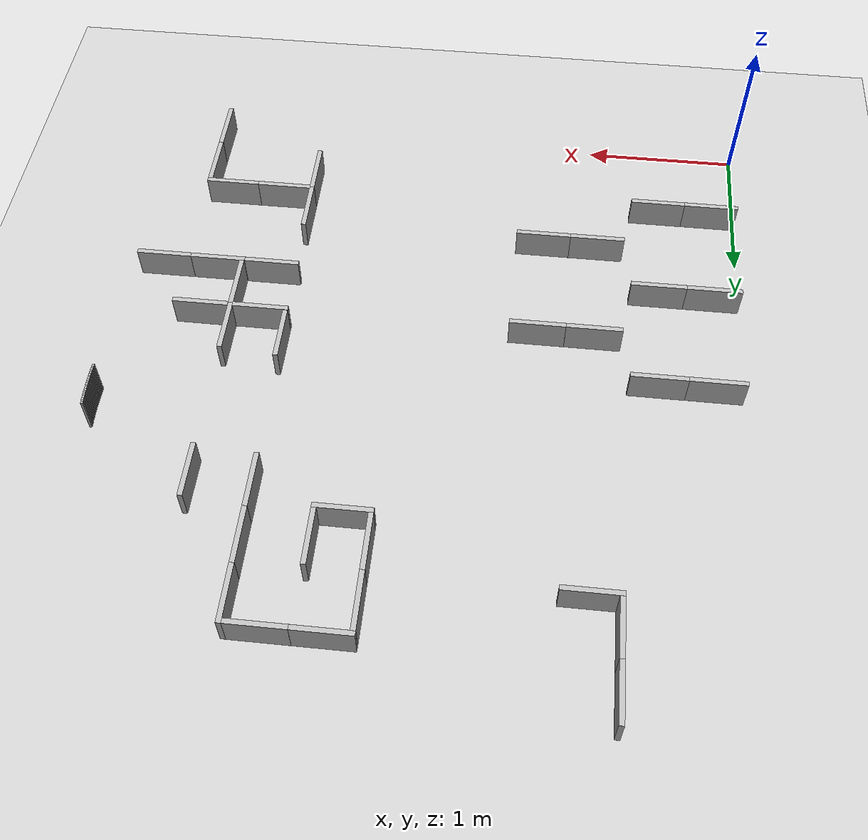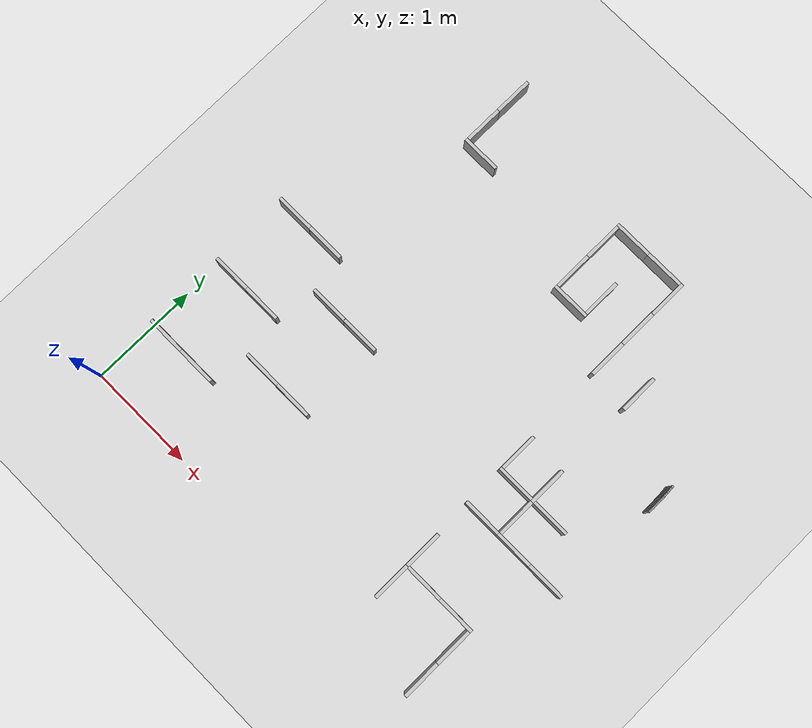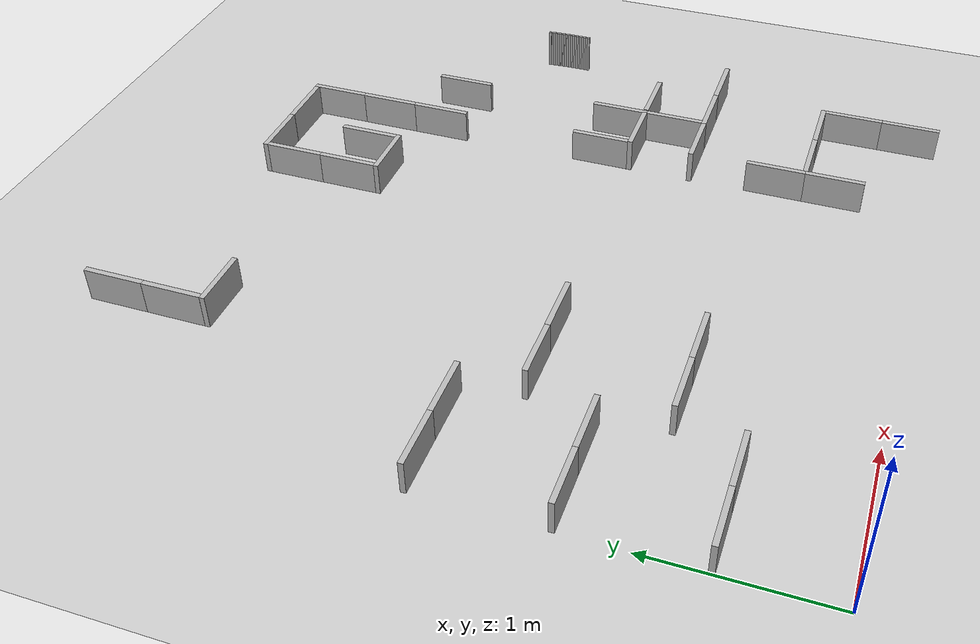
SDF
<sdf version="1.6">
 <world name="base">
  <include><uri>model://sun</uri></include>
  <include><uri>model://ground_plane</uri></include>
  <model name="k404">
   <link name="276_link">
    <collision name="collision_276">
     <pose>3.991618651844006 2.7045397119951424 0 0 -0 0</pose>
     <geometry><box><size>0.015 0.015 0.50</size></box></geometry>
    </collision>
    <visual name="visual_276">
     <pose>3.991618651844006 2.7045397119951424 0 0 -0 0</pose>
     <geometry><box><size>0.015 0.015 0.50</size></box></geometry>
    </visual>
   </link>
   <link name="277_link">
    <collision name="collision_277">
     <pose>3.9927165269257694 2.690694300887916 0 0 -0 0</pose>
     <geometry><box><size>0.015 0.015 0.50</size></box></geometry>
    </collision>
    <visual name="visual_277">
     <pose>3.9927165269257694 2.690694300887916 0 0 -0 0</pose>
     <geometry><box><size>0.015 0.015 0.50</size></box></geometry>
    </visual>
   </link>
   <link name="278_link">
    <collision name="collision_278">
     <pose>3.993737466510136 2.6768430041692572 0 0 -0 0</pose>
     <geometry><box><size>0.015 0.015 0.50</size></box></geometry>
    </collision>
    <visual name="visual_278">
     <pose>3.993737466510136 2.6768430041692572 0 0 -0 0</pose>
     <geometry><box><size>0.015 0.015 0.50</size></box></geometry>
    </visual>
   </link>
   <link name="279_link">
    <collision name="collision_279">
     <pose>3.9946814390867074 2.662986249347224 0 0 -0 0</pose>
     <geometry><box><size>0.015 0.015 0.50</size></box></geometry>
    </collision>
    <visual name="visual_279">
     <pose>3.9946814390867074 2.662986249347224 0 0 -0 0</pose>
     <geometry><box><size>0.015 0.015 0.50</size></box></geometry>
    </visual>
   </link>
   <link name="280_link">
    <collision name="collision_280">
     <pose>3.9955484155206014 2.6491244640983345 0 0 -0 0</pose>
     <geometry><box><size>0.015 0.015 0.50</size></box></geometry>
    </collision>
    <visual name="visual_280">
     <pose>3.9955484155206014 2.6491244640983345 0 0 -0 0</pose>
     <geometry><box><size>0.015 0.015 0.50</size></box></geometry>
    </visual>
   </link>
   <link name="281_link">
    <collision name="collision_281">
     <pose>3.9963383690533556 2.6352580762543663 0 0 -0 0</pose>
     <geometry><box><size>0.015 0.015 0.50</size></box></geometry>
    </collision>
    <visual name="visual_281">
     <pose>3.9963383690533556 2.6352580762543663 0 0 -0 0</pose>
     <geometry><box><size>0.015 0.015 0.50</size></box></geometry>
    </visual>
   </link>
   <link name="282_link">
    <collision name="collision_282">
     <pose>3.997051275303751 2.621387513789152 0 0 -0 0</pose>
     <geometry><box><size>0.015 0.015 0.50</size></box></geometry>
    </collision>
    <visual name="visual_282">
     <pose>3.997051275303751 2.621387513789152 0 0 -0 0</pose>
     <geometry><box><size>0.015 0.015 0.50</size></box></geometry>
    </visual>
   </link>
   <link name="283_link">
    <collision name="collision_283">
     <pose>3.997687112268564 2.607513204805371 0 0 -0 0</pose>
     <geometry><box><size>0.015 0.015 0.50</size></box></geometry>
    </collision>
    <visual name="visual_283">
     <pose>3.997687112268564 2.607513204805371 0 0 -0 0</pose>
     <geometry><box><size>0.015 0.015 0.50</size></box></geometry>
    </visual>
   </link>
   <link name="284_link">
    <collision name="collision_284">
     <pose>3.998245860323248 2.5936355775213333 0 0 -0 0</pose>
     <geometry><box><size>0.015 0.015 0.50</size></box></geometry>
    </collision>
    <visual name="visual_284">
     <pose>3.998245860323248 2.5936355775213333 0 0 -0 0</pose>
     <geometry><box><size>0.015 0.015 0.50</size></box></geometry>
    </visual>
   </link>
   <link name="285_link">
    <collision name="collision_285">
     <pose>3.998727502222537 2.579755060257769 0 0 -0 0</pose>
     <geometry><box><size>0.015 0.015 0.50</size></box></geometry>
    </collision>
    <visual name="visual_285">
     <pose>3.998727502222537 2.579755060257769 0 0 -0 0</pose>
     <geometry><box><size>0.015 0.015 0.50</size></box></geometry>
    </visual>
   </link>
   <link name="286_link">
    <collision name="collision_286">
     <pose>3.999132023100979 2.565872081424602 0 0 -0 0</pose>
     <geometry><box><size>0.015 0.015 0.50</size></box></geometry>
    </collision>
    <visual name="visual_286">
     <pose>3.999132023100979 2.565872081424602 0 0 -0 0</pose>
     <geometry><box><size>0.015 0.015 0.50</size></box></geometry>
    </visual>
   </link>
   <link name="287_link">
    <collision name="collision_287">
     <pose>3.9994594104733925 2.551987069507731 0 0 -0 0</pose>
     <geometry><box><size>0.015 0.015 0.50</size></box></geometry>
    </collision>
    <visual name="visual_287">
     <pose>3.9994594104733925 2.551987069507731 0 0 -0 0</pose>
     <geometry><box><size>0.015 0.015 0.50</size></box></geometry>
    </visual>
   </link>
   <link name="288_link">
    <collision name="collision_288">
     <pose>3.999709654235256 2.538100453055805 0 0 -0 0</pose>
     <geometry><box><size>0.015 0.015 0.50</size></box></geometry>
    </collision>
    <visual name="visual_288">
     <pose>3.999709654235256 2.538100453055805 0 0 -0 0</pose>
     <geometry><box><size>0.015 0.015 0.50</size></box></geometry>
    </visual>
   </link>
   <link name="289_link">
    <collision name="collision_289">
     <pose>3.9998827466630162 2.524212660666994 0 0 -0 0</pose>
     <geometry><box><size>0.015 0.015 0.50</size></box></geometry>
    </collision>
    <visual name="visual_289">
     <pose>3.9998827466630162 2.524212660666994 0 0 -0 0</pose>
     <geometry><box><size>0.015 0.015 0.50</size></box></geometry>
    </visual>
   </link>
   <link name="290_link">
    <collision name="collision_290">
     <pose>3.9999786824143277 2.510324120975764 0 0 -0 0</pose>
     <geometry><box><size>0.015 0.015 0.50</size></box></geometry>
    </collision>
    <visual name="visual_290">
     <pose>3.9999786824143277 2.510324120975764 0 0 -0 0</pose>
     <geometry><box><size>0.015 0.015 0.50</size></box></geometry>
    </visual>
   </link>
   <link name="291_link">
    <collision name="collision_291">
     <pose>3.9999974585282185 2.4964352626396438 0 0 -0 0</pose>
     <geometry><box><size>0.015 0.015 0.50</size></box></geometry>
    </collision>
    <visual name="visual_291">
     <pose>3.9999974585282185 2.4964352626396438 0 0 -0 0</pose>
     <geometry><box><size>0.015 0.015 0.50</size></box></geometry>
    </visual>
   </link>
   <link name="292_link">
    <collision name="collision_292">
     <pose>3.99993907442518 2.482546514325999 0 0 -0 0</pose>
     <geometry><box><size>0.015 0.015 0.50</size></box></geometry>
    </collision>
    <visual name="visual_292">
     <pose>3.99993907442518 2.482546514325999 0 0 -0 0</pose>
     <geometry><box><size>0.015 0.015 0.50</size></box></geometry>
    </visual>
   </link>
   <link name="293_link">
    <collision name="collision_293">
     <pose>3.999803531907187 2.468658304698798 0 0 -0 0</pose>
     <geometry><box><size>0.015 0.015 0.50</size></box></geometry>
    </collision>
    <visual name="visual_293">
     <pose>3.999803531907187 2.468658304698798 0 0 -0 0</pose>
     <geometry><box><size>0.015 0.015 0.50</size></box></geometry>
    </visual>
   </link>
   <link name="294_link">
    <collision name="collision_294">
     <pose>3.9995908351576386 2.454771062405384 0 0 -0 0</pose>
     <geometry><box><size>0.015 0.015 0.50</size></box></geometry>
    </collision>
    <visual name="visual_294">
     <pose>3.9995908351576386 2.454771062405384 0 0 -0 0</pose>
     <geometry><box><size>0.015 0.015 0.50</size></box></geometry>
    </visual>
   </link>
   <link name="295_link">
    <collision name="collision_295">
     <pose>3.9993009907412334 2.4408852160632426 0 0 -0 0</pose>
     <geometry><box><size>0.015 0.015 0.50</size></box></geometry>
    </collision>
    <visual name="visual_295">
     <pose>3.9993009907412334 2.4408852160632426 0 0 -0 0</pose>
     <geometry><box><size>0.015 0.015 0.50</size></box></geometry>
    </visual>
   </link>
   <link name="296_link">
    <collision name="collision_296">
     <pose>3.9989340076037627 2.427001194246778 0 0 -0 0</pose>
     <geometry><box><size>0.015 0.015 0.50</size></box></geometry>
    </collision>
    <visual name="visual_296">
     <pose>3.9989340076037627 2.427001194246778 0 0 -0 0</pose>
     <geometry><box><size>0.015 0.015 0.50</size></box></geometry>
    </visual>
   </link>
   <static>true</static>
  </model>
  <model name="Placa1">
   <pose>2.33874 3.98001 0 0 -0 1.57</pose>
   <static>1</static>
   <link name="link">
    <collision name="collision"><geometry><box><size>0.031694 0.360886 0.40006</size></box></geometry></collision>
    <visual name="visual"><geometry><box><size>0.031694 0.360886 0.40006</size></box></geometry></visual>
   </link>
  </model>
  <model name="Placa2">
   <pose>0.9475 1.775 0 0 -0 1.57</pose>
   <static>1</static>
   <link name="link">
    <collision name="collision"><geometry><box><size>0.031694 0.360886 0.40006</size></box></geometry></collision>
    <visual name="visual"><geometry><box><size>0.031694 0.360886 0.40006</size></box></geometry></visual>
   </link>
  </model>
  <model name="Placa3">
   <pose>1.30789 1 0 0 -0 1.57</pose>
   <static>1</static>
   <link name="link">
    <collision name="collision"><geometry><box><size>0.031694 0.360886 0.40006</size></box></geometry></collision>
    <visual name="visual"><geometry><box><size>0.031694 0.360886 0.40006</size></box></geometry></visual>
   </link>
  </model>
  <model name="Placa4">
   <pose>0.948425 1 0 0 -0 1.57</pose>
   <static>1</static>
   <link name="link">
    <collision name="collision"><geometry><box><size>0.031694 0.360886 0.40006</size></box></geometry></collision>
    <visual name="visual"><geometry><box><size>0.031694 0.360886 0.40006</size></box></geometry></visual>
   </link>
  </model>
  <model name="Placa5">
   <pose>0.18 1.38 0 0 -0 1.57</pose>
   <static>1</static>
   <link name="link">
    <collision name="collision"><geometry><box><size>0.031694 0.360886 0.40006</size></box></geometry></collision>
    <visual name="visual"><geometry><box><size>0.031694 0.360886 0.40006</size></box></geometry></visual>
   </link>
  </model>
  <model name="Placa6">
   <pose>0.539939 1.38001 0 0 -0 1.57</pose>
   <static>1</static>
   <link name="link">
    <collision name="collision"><geometry><box><size>0.031694 0.360886 0.40006</size></box></geometry></collision>
    <visual name="visual"><geometry><box><size>0.031694 0.360886 0.40006</size></box></geometry></visual>
   </link>
  </model>
  <model name="Placa7">
   <pose>0.54085 0.630003 0 0 -0 1.57</pose>
   <static>1</static>
   <link name="link">
    <collision name="collision"><geometry><box><size>0.031694 0.360886 0.40006</size></box></geometry></collision>
    <visual name="visual"><geometry><box><size>0.031694 0.360886 0.40006</size></box></geometry></visual>
   </link>
  </model>
  <model name="Placa8">
   <pose>1.3086 1.775 0 0 -0 1.57</pose>
   <static>1</static>
   <link name="link">
    <collision name="collision"><geometry><box><size>0.031694 0.360886 0.40006</size></box></geometry></collision>
    <visual name="visual"><geometry><box><size>0.031694 0.360886 0.40006</size></box></geometry></visual>
   </link>
  </model>
  <model name="Placa9">
   <pose>3.80355 1.43 0 0 -0 1.57</pose>
   <static>1</static>
   <link name="link">
    <collision name="collision"><geometry><box><size>0.031694 0.360886 0.40006</size></box></geometry></collision>
    <visual name="visual"><geometry><box><size>0.031694 0.360886 0.40006</size></box></geometry></visual>
   </link>
  </model>
  <model name="Placa10">
   <pose>0.54 2.12 0 0 -0 1.57</pose>
   <static>1</static>
   <link name="link">
    <collision name="collision"><geometry><box><size>0.031694 0.360886 0.40006</size></box></geometry></collision>
    <visual name="visual"><geometry><box><size>0.031694 0.360886 0.40006</size></box></geometry></visual>
   </link>
  </model>
  <model name="Placa11">
   <pose>0.18 2.12 0 0 -0 1.57</pose>
   <static>1</static>
   <link name="link">
    <collision name="collision"><geometry><box><size>0.031694 0.360886 0.40006</size></box></geometry></collision>
    <visual name="visual"><geometry><box><size>0.031694 0.360886 0.40006</size></box></geometry></visual>
   </link>
  </model>
  <model name="Placa12">
   <pose>0.915 3.6 0 0 -0 1.57</pose>
   <static>1</static>
   <link name="link">
    <collision name="collision"><geometry><box><size>0.031694 0.360886 0.40006</size></box></geometry></collision>
    <visual name="visual"><geometry><box><size>0.031694 0.360886 0.40006</size></box></geometry></visual>
   </link>
  </model>
  <model name="Placa13">
   <pose>2.69929 3.98001 0 0 -0 1.57</pose>
   <static>1</static>
   <link name="link">
    <collision name="collision"><geometry><box><size>0.031694 0.360886 0.40006</size></box></geometry></collision>
    <visual name="visual"><geometry><box><size>0.031694 0.360886 0.40006</size></box></geometry></visual>
   </link>
  </model>
  <model name="Placa14">
   <pose>3.44274 1.43 0 0 -0 1.57</pose>
   <static>1</static>
   <link name="link">
    <collision name="collision"><geometry><box><size>0.031694 0.360886 0.40006</size></box></geometry></collision>
    <visual name="visual"><geometry><box><size>0.031694 0.360886 0.40006</size></box></geometry></visual>
   </link>
  </model>
  <model name="Placa15">
   <pose>3.279 3.06675 0 0 -0 0</pose>
   <static>1</static>
   <link name="link">
    <collision name="collision"><geometry><box><size>0.031694 0.360886 0.40006</size></box></geometry></collision>
    <visual name="visual"><geometry><box><size>0.031694 0.360886 0.40006</size></box></geometry></visual>
   </link>
  </model>
  <model name="Placa16">
   <pose>2.33861 3.22858 0 0 -0 1.57</pose>
   <static>1</static>
   <link name="link">
    <collision name="collision"><geometry><box><size>0.031694 0.360886 0.40006</size></box></geometry></collision>
    <visual name="visual"><geometry><box><size>0.031694 0.360886 0.40006</size></box></geometry></visual>
   </link>
  </model>
  <model name="Placa17">
   <pose>3.27991 1.62642 0 0 -0 0</pose>
   <static>1</static>
   <link name="link">
    <collision name="collision"><geometry><box><size>0.031694 0.360886 0.40006</size></box></geometry></collision>
    <visual name="visual"><geometry><box><size>0.031694 0.360886 0.40006</size></box></geometry></visual>
   </link>
  </model>
  <model name="Placa18">
   <pose>2.895 3.09571 0 0 -0 0</pose>
   <static>1</static>
   <link name="link">
    <collision name="collision"><geometry><box><size>0.031694 0.360886 0.40006</size></box></geometry></collision>
    <visual name="visual"><geometry><box><size>0.031694 0.360886 0.40006</size></box></geometry></visual>
   </link>
  </model>
  <model name="Placa19">
   <pose>2.174 3.78501 0 0 -0 0</pose>
   <static>1</static>
   <link name="link">
    <collision name="collision"><geometry><box><size>0.031694 0.360886 0.40006</size></box></geometry></collision>
    <visual name="visual"><geometry><box><size>0.031694 0.360886 0.40006</size></box></geometry></visual>
   </link>
  </model>
  <model name="Placa20">
   <pose>2.174 3.42434 0 0 -0 0</pose>
   <static>1</static>
   <link name="link">
    <collision name="collision"><geometry><box><size>0.031694 0.360886 0.40006</size></box></geometry></collision>
    <visual name="visual"><geometry><box><size>0.031694 0.360886 0.40006</size></box></geometry></visual>
   </link>
  </model>
  <model name="Placa21">
   <pose>2.50325 3.42462 0 0 -0 0</pose>
   <static>1</static>
   <link name="link">
    <collision name="collision"><geometry><box><size>0.031694 0.360886 0.40006</size></box></geometry></collision>
    <visual name="visual"><geometry><box><size>0.031694 0.360886 0.40006</size></box></geometry></visual>
   </link>
  </model>
  <model name="Placa22">
   <pose>3.47502 1.82086 0.005089 0 -0 1.57</pose>
   <static>1</static>
   <link name="link">
    <collision name="collision"><geometry><box><size>0.031694 0.360886 0.40006</size></box></geometry></collision>
    <visual name="visual"><geometry><box><size>0.031694 0.360886 0.40006</size></box></geometry></visual>
   </link>
  </model>
  <model name="Placa23">
   <pose>0.750271 3.79641 0 0 -0 0</pose>
   <static>1</static>
   <link name="link">
    <collision name="collision"><geometry><box><size>0.031694 0.360886 0.40006</size></box></geometry></collision>
    <visual name="visual"><geometry><box><size>0.031694 0.360886 0.40006</size></box></geometry></visual>
   </link>
  </model>
  <model name="Placa24">
   <pose>2.89541 3.81513 0 0 -0 0</pose>
   <static>1</static>
   <link name="link">
    <collision name="collision"><geometry><box><size>0.031694 0.360886 0.40006</size></box></geometry></collision>
    <visual name="visual"><geometry><box><size>0.031694 0.360886 0.40006</size></box></geometry></visual>
   </link>
  </model>
  <model name="Placa25">
   <pose>2.895 3.45457 0 0 -0 0</pose>
   <static>1</static>
   <link name="link">
    <collision name="collision"><geometry><box><size>0.031694 0.360886 0.40006</size></box></geometry></collision>
    <visual name="visual"><geometry><box><size>0.031694 0.360886 0.40006</size></box></geometry></visual>
   </link>
  </model>
  <model name="Placa26">
   <pose>0.750309 4.15611 0 0 -0 0</pose>
   <static>1</static>
   <link name="link">
    <collision name="collision"><geometry><box><size>0.031694 0.360886 0.40006</size></box></geometry></collision>
    <visual name="visual"><geometry><box><size>0.031694 0.360886 0.40006</size></box></geometry></visual>
   </link>
  </model>
  <model name="Placa27">
   <pose>3.279 1.98772 0 0 -0 0</pose>
   <static>1</static>
   <link name="link">
    <collision name="collision"><geometry><box><size>0.031694 0.360886 0.40006</size></box></geometry></collision>
    <visual name="visual"><geometry><box><size>0.031694 0.360886 0.40006</size></box></geometry></visual>
   </link>
  </model>
  <model name="Placa28">
   <pose>0.18 0.63 0 0 -0 1.57</pose>
   <static>1</static>
   <link name="link">
    <collision name="collision"><geometry><box><size>0.031694 0.360886 0.40006</size></box></geometry></collision>
    <visual name="visual"><geometry><box><size>0.031694 0.360886 0.40006</size></box></geometry></visual>
   </link>
  </model>
  <model name="Placa29">
   <pose>2.91906 2.01705 0 0 -0 0</pose>
   <static>1</static>
   <link name="link">
    <collision name="collision"><geometry><box><size>0.031694 0.360886 0.40006</size></box></geometry></collision>
    <visual name="visual"><geometry><box><size>0.031694 0.360886 0.40006</size></box></geometry></visual>
   </link>
  </model>
  <model name="Placa30">
   <pose>3.12454 0.724 0 0 -0 1.57</pose>
   <static>1</static>
   <link name="link">
    <collision name="collision"><geometry><box><size>0.031694 0.360886 0.40006</size></box></geometry></collision>
    <visual name="visual"><geometry><box><size>0.031694 0.360886 0.40006</size></box></geometry></visual>
   </link>
  </model>
  <model name="Placa31">
   <pose>3.48525 0.724 0 0 -0 1.57</pose>
   <static>1</static>
   <link name="link">
    <collision name="collision"><geometry><box><size>0.031694 0.360886 0.40006</size></box></geometry></collision>
    <visual name="visual"><geometry><box><size>0.031694 0.360886 0.40006</size></box></geometry></visual>
   </link>
  </model>
  <model name="Placa32">
   <pose>3.65 0.529833 0 0 -0 0</pose>
   <static>1</static>
   <link name="link">
    <collision name="collision"><geometry><box><size>0.031694 0.360886 0.40006</size></box></geometry></collision>
    <visual name="visual"><geometry><box><size>0.031694 0.360886 0.40006</size></box></geometry></visual>
   </link>
  </model>
  <model name="Placa33">
   <pose>3.65 0.17 0 0 -0 0</pose>
   <static>1</static>
   <link name="link">
    <collision name="collision"><geometry><box><size>0.031694 0.360886 0.40006</size></box></geometry></collision>
    <visual name="visual"><geometry><box><size>0.031694 0.360886 0.40006</size></box></geometry></visual>
   </link>
  </model>
  <model name="Placa34">
   <pose>3.08322 1.43 0 0 -0 1.57</pose>
   <static>1</static>
   <link name="link">
    <collision name="collision"><geometry><box><size>0.031694 0.360886 0.40006</size></box></geometry></collision>
    <visual name="visual"><geometry><box><size>0.031694 0.360886 0.40006</size></box></geometry></visual>
   </link>
  </model>
  <model name="Placa35">
   <pose>2.93 0.902247 0 0 -0 0</pose>
   <static>1</static>
   <link name="link">
    <collision name="collision"><geometry><box><size>0.031694 0.360886 0.40006</size></box></geometry></collision>
    <visual name="visual"><geometry><box><size>0.031694 0.360886 0.40006</size></box></geometry></visual>
   </link>
  </model>
  <model name="Placa36">
   <pose>2.93 0.544087 0 0 -0 0</pose>
   <static>1</static>
   <link name="link">
    <collision name="collision"><geometry><box><size>0.031694 0.360886 0.40006</size></box></geometry></collision>
    <visual name="visual"><geometry><box><size>0.031694 0.360886 0.40006</size></box></geometry></visual>
   </link>
  </model>
  <model name="Placa37">
   <pose>3.08321 1.82086 0.005089 0 -0 1.57</pose>
   <static>1</static>
   <link name="link">
    <collision name="collision"><geometry><box><size>0.031694 0.360886 0.40006</size></box></geometry></collision>
    <visual name="visual"><geometry><box><size>0.031694 0.360886 0.40006</size></box></geometry></visual>
   </link>
  </model>
 </world>
</sdf>
